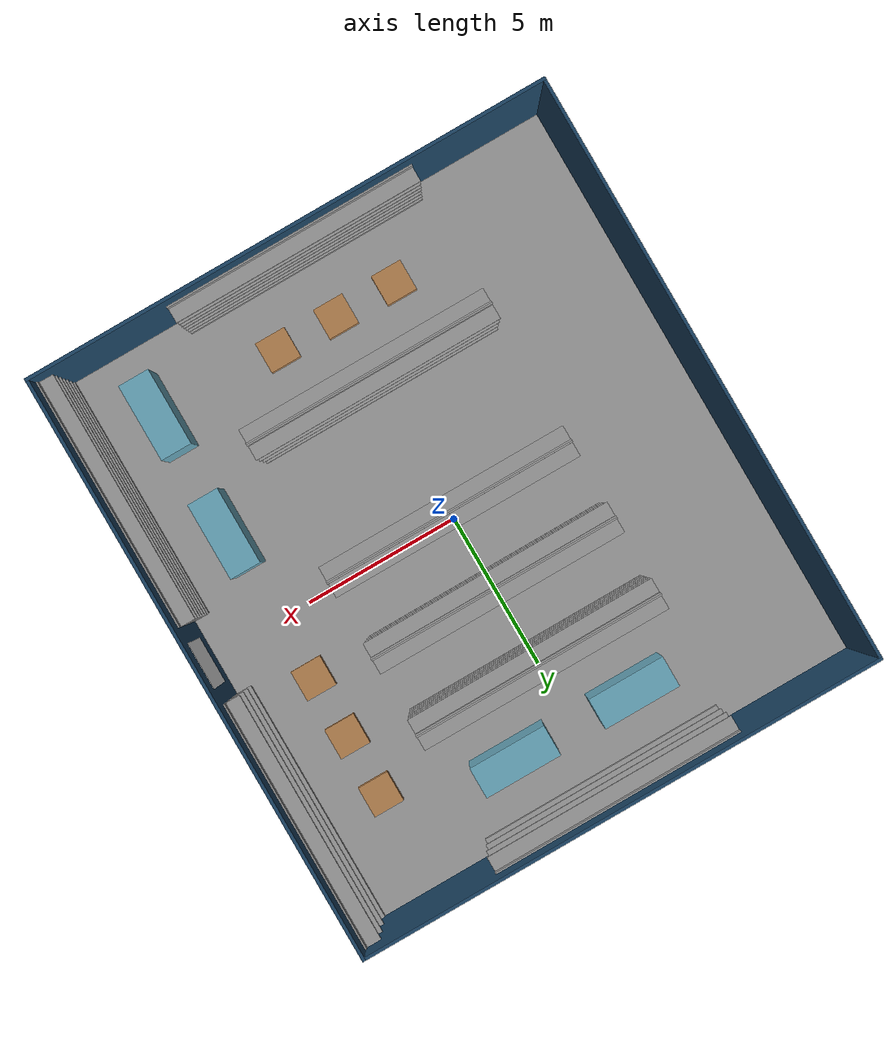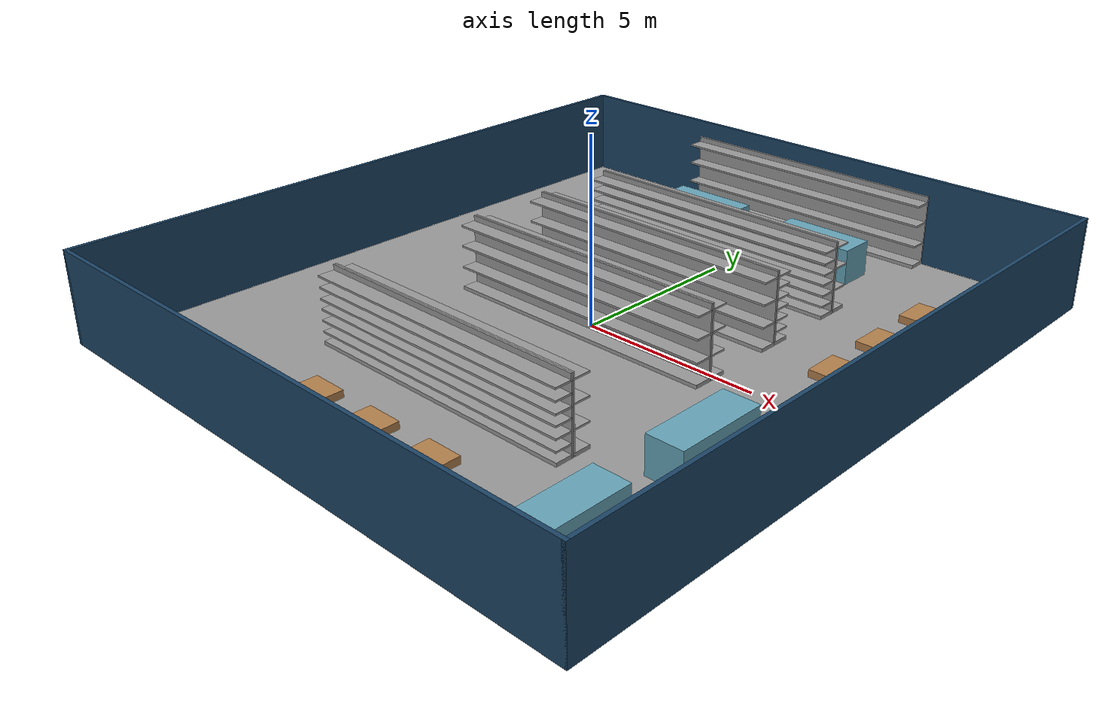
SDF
<sdf version="1.6">
 <world name="grocery_store">
  <include><uri>model://sun</uri></include>
  <include><uri>model://floor</uri></include>
  <include><name>alley_1_left_shelf</name><uri>model://8x_shelving_4</uri><pose>0 9 0 0 0 0</pose></include>
  <include>
   <name>alley_1_right_shelf</name>
   <uri>model://8x_shelving_4</uri>
   <pose>0 5 0 0 0 3.1416</pose>
  </include>
  <include><name>alley_1_freezer_1</name><uri>model://freezer</uri><pose>-2 7 0.5 0 0 0</pose></include>
  <include><name>alley_1_freezer_2</name><uri>model://freezer</uri><pose>2 7 0.5 0 0 0</pose></include>
  <include><name>alley_2_left_shelf</name><uri>model://8x_shelving_8</uri><pose>0 4.5 0 0 0 0</pose></include>
  <include>
   <name>alley_2_right_shelf</name>
   <uri>model://8x_shelving_8</uri>
   <pose>0 2.5 0 0 0 3.1416</pose>
  </include>
  <include><name>alley_3_left_shelf</name><uri>model://8x_shelving_4</uri><pose>0 2 0 0 0 0</pose></include>
  <include>
   <name>alley_3_right_shelf</name>
   <uri>model://8x_shelving_4</uri>
   <pose>0 0 0 0 0 3.1416</pose>
  </include>
  <include><name>alley_4_left_shelf</name><uri>model://8x_shelving_4</uri><pose>0 -0.5 0 0 0 0</pose></include>
  <include>
   <name>alley_4_right_shelf</name>
   <uri>model://8x_shelving_4</uri>
   <pose>0 -4.5 0 0 0 3.1416</pose>
  </include>
  <include><name>alley_5_left_shelf</name><uri>model://8x_shelving_8</uri><pose>0 -5 0 0 0 0</pose></include>
  <include>
   <name>alley_5_right_shelf</name>
   <uri>model://8x_shelving_8</uri>
   <pose>0 -9 0 0 0 3.1416</pose>
  </include>
  <include><name>alley_5_pallet_1</name><uri>model://pallet</uri><pose>-2 -7 0.1 0 0 0</pose></include>
  <include><name>alley_5_pallet_2</name><uri>model://pallet</uri><pose>0 -7 0.1 0 0 0</pose></include>
  <include><name>alley_5_pallet_3</name><uri>model://pallet</uri><pose>2 -7 0.1 0 0 0</pose></include>
  <include>
   <name>back_wall_left_shelf</name>
   <uri>model://8x_shelving_4</uri>
   <pose>8 5.25 0 0 0 -1.5708</pose>
  </include>
  <include>
   <name>back_wall_right_shelf</name>
   <uri>model://8x_shelving_8</uri>
   <pose>8 -5.25 0 0 0 -1.5708</pose>
  </include>
  <include><name>back_wall_freezer_1</name><uri>model://freezer</uri><pose>6 -3 0.5 0 0 1.5708</pose></include>
  <include><name>back_wall_freezer_2</name><uri>model://freezer</uri><pose>6 -7 0.5 0 0 1.5708</pose></include>
  <include><name>back_wall_pallet_1</name><uri>model://pallet</uri><pose>6 2 0.1 0 0 0</pose></include>
  <include><name>back_wall_pallet_2</name><uri>model://pallet</uri><pose>6 4 0.1 0 0 0</pose></include>
  <include><name>back_wall_pallet_3</name><uri>model://pallet</uri><pose>6 6 0.1 0 0 0</pose></include>
  <include><uri>model://walls</uri></include>
  <include><uri>model://logo</uri><pose>8.25 0 1.25 0 0 0</pose></include>
 </world>
</sdf>

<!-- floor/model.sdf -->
<sdf version="1.5">
  <model name="floor">
    <static>true</static>
    <link name="link">
      <collision name="collision">
        <geometry>
          <plane>
            <normal>0 0 1</normal>
            <size>16.6 18.6</size>
          </plane>
        </geometry>
        <surface>
          <contact>
             <collide_bitmask>0xffff</collide_bitmask>
          </contact>
          <friction>
            <ode>
              <mu>100</mu>
              <mu2>50</mu2>
            </ode>
          </friction>
        </surface>
      </collision>
      <visual name="visual">
        <cast_shadows>false</cast_shadows>
        <geometry>
          <plane>
            <normal>0 0 1</normal>
            <size>16.6 18.6</size>
          </plane>
        </geometry>
        <material>
          <script>
            <uri>file://media/materials/scripts/gazebo.material</uri>
            <name>Gazebo/Grey</name>
          </script>
          <ambient>0.99 0.99 0.99 1</ambient>
        </material>
      </visual>
    </link>
  </model>
</sdf>

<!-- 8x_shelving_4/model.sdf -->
<sdf version="1.6">
  <model name="8x_shelving_4">
    <static>true</static>

    <link name="base">
      <pose>0 0 0.05 0 0 0</pose>
      <collision name="collision">
        <geometry>
          <box>
            <size>8 0.5 0.10</size>
          </box>
        </geometry>
      </collision>
      <visual name="visual">
        <geometry>
          <box>
            <size>8 0.5 0.10</size>
          </box>
        </geometry>
        <material>
          <script>
            <uri>file://media/materials/scripts/gazebo.material</uri>
            <name>Gazebo/Grey</name>
          </script>
          <ambient>0.8 0.8 0.8 1</ambient>
        </material>
      </visual>
    </link>

    <link name="back">
      <pose>0 0.225 1 0 0 0</pose>
      <collision name="collision">
        <geometry>
          <box>
            <size>8 0.05 2</size>
          </box>
        </geometry>
      </collision>
      <visual name="visual">
        <geometry>
          <box>
            <size>8 0.05 2</size>
          </box>
        </geometry>
        <material>
          <script>
            <uri>file://media/materials/scripts/gazebo.material</uri>
            <name>Gazebo/Grey</name>
          </script>
          <ambient>0.8 0.8 0.8 1</ambient>
        </material>
      </visual>
    </link>

    <link name="shelf_1">
      <pose>0 0 0.65 0 0 0</pose>
      <collision name="collision">
        <geometry>
          <box>
            <size>8 0.5 0.05</size>
          </box>
        </geometry>
      </collision>
      <visual name="visual">
        <geometry>
          <box>
            <size>8 0.5 0.05</size>
          </box>
        </geometry>
        <material>
          <script>
            <uri>file://media/materials/scripts/gazebo.material</uri>
            <name>Gazebo/Grey</name>
          </script>
          <ambient>0.8 0.8 0.8 1</ambient>
        </material>
      </visual>
    </link>

    <link name="shelf_2">
      <pose>0 0 1.25 0 0 0</pose>
      <collision name="collision">
        <geometry>
          <box>
            <size>8 0.5 0.05</size>
          </box>
        </geometry>
      </collision>
      <visual name="visual">
        <geometry>
          <box>
            <size>8 0.5 0.05</size>
          </box>
        </geometry>
        <material>
          <script>
            <uri>file://media/materials/scripts/gazebo.material</uri>
            <name>Gazebo/Grey</name>
          </script>
          <ambient>0.8 0.8 0.8 1</ambient>
        </material>
      </visual>
    </link>

    <link name="shelf_3">
      <pose>0 0 1.825 0 0 0</pose>
      <collision name="collision">
        <geometry>
          <box>
            <size>8 0.5 0.05</size>
          </box>
        </geometry>
      </collision>
      <visual name="visual">
        <geometry>
          <box>
            <size>8 0.5 0.05</size>
          </box>
        </geometry>
        <material>
          <script>
            <uri>file://media/materials/scripts/gazebo.material</uri>
            <name>Gazebo/Grey</name>
          </script>
          <ambient>0.8 0.8 0.8 1</ambient>
        </material>
      </visual>
    </link>
  </model>
</sdf>

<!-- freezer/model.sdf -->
<sdf version="1.4">
  <model name="freezer">
    <static>true</static>
    <link name="link">
      <collision name="collision">
        <geometry>
          <box>
            <size>2.5 1 1</size>
          </box>
        </geometry>
      </collision>
      <visual name="visual">
        <geometry>
          <box>
            <size>2.5 1 1</size>
          </box>
        </geometry>
        <material>
          <script>
            <uri>file://media/materials/scripts/gazebo.material</uri>
            <name>Gazebo/Grey</name>
          </script>
          <ambient>0.4 0.65 0.73 1</ambient>
        </material>
      </visual>
    </link>
  </model>
</sdf>

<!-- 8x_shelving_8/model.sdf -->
<sdf version="1.6">
  <model name="8x_shelving_8">
    <static>true</static>

    <link name="base">
      <pose>0 0 0.05 0 0 0</pose>
      <collision name="collision">
        <geometry>
          <box>
            <size>8 0.5 0.10</size>
          </box>
        </geometry>
      </collision>
      <visual name="visual">
        <geometry>
          <box>
            <size>8 0.5 0.10</size>
          </box>
        </geometry>
        <material>
          <script>
            <uri>file://media/materials/scripts/gazebo.material</uri>
            <name>Gazebo/Grey</name>
          </script>
          <ambient>0.8 0.8 0.8 1</ambient>
        </material>
      </visual>
    </link>

    <link name="back">
      <pose>0 0.225 1 0 0 0</pose>
      <collision name="collision">
        <geometry>
          <box>
            <size>8 0.05 2</size>
          </box>
        </geometry>
      </collision>
      <visual name="visual">
        <geometry>
          <box>
            <size>8 0.05 2</size>
          </box>
        </geometry>
        <material>
          <script>
            <uri>file://media/materials/scripts/gazebo.material</uri>
            <name>Gazebo/Grey</name>
          </script>
          <ambient>0.8 0.8 0.8 1</ambient>
        </material>
      </visual>
    </link>

    <link name="shelf_1">
      <pose>0 0 0.35 0 0 0</pose>
      <collision name="collision">
        <geometry>
          <box>
            <size>8 0.5 0.05</size>
          </box>
        </geometry>
      </collision>
      <visual name="visual">
        <geometry>
          <box>
            <size>8 0.5 0.05</size>
          </box>
        </geometry>
        <material>
          <script>
            <uri>file://media/materials/scripts/gazebo.material</uri>
            <name>Gazebo/Grey</name>
          </script>
          <ambient>0.8 0.8 0.8 1</ambient>
        </material>
      </visual>
    </link>

    <link name="shelf_2">
      <pose>0 0 0.65 0 0 0</pose>
      <collision name="collision">
        <geometry>
          <box>
            <size>8 0.5 0.05</size>
          </box>
        </geometry>
      </collision>
      <visual name="visual">
        <geometry>
          <box>
            <size>8 0.5 0.05</size>
          </box>
        </geometry>
        <material>
          <script>
            <uri>file://media/materials/scripts/gazebo.material</uri>
            <name>Gazebo/Grey</name>
          </script>
          <ambient>0.8 0.8 0.8 1</ambient>
        </material>
      </visual>
    </link>

    <link name="shelf_3">
      <pose>0 0 0.95 0 0 0</pose>
      <collision name="collision">
        <geometry>
          <box>
            <size>8 0.5 0.05</size>
          </box>
        </geometry>
      </collision>
      <visual name="visual">
        <geometry>
          <box>
            <size>8 0.5 0.05</size>
          </box>
        </geometry>
        <material>
          <script>
            <uri>file://media/materials/scripts/gazebo.material</uri>
            <name>Gazebo/Grey</name>
          </script>
          <ambient>0.8 0.8 0.8 1</ambient>
        </material>
      </visual>
    </link>

    <link name="shelf_4">
      <pose>0 0 1.225 0 0 0</pose>
      <collision name="collision">
        <geometry>
          <box>
            <size>8 0.5 0.05</size>
          </box>
        </geometry>
      </collision>
      <visual name="visual">
        <geometry>
          <box>
            <size>8 0.5 0.05</size>
          </box>
        </geometry>
        <material>
          <script>
            <uri>file://media/materials/scripts/gazebo.material</uri>
            <name>Gazebo/Grey</name>
          </script>
          <ambient>0.8 0.8 0.8 1</ambient>
        </material>
      </visual>
    </link>

    <link name="shelf_5">
      <pose>0 0 1.525 0 0 0</pose>
      <collision name="collision">
        <geometry>
          <box>
            <size>8 0.5 0.05</size>
          </box>
        </geometry>
      </collision>
      <visual name="visual">
        <geometry>
          <box>
            <size>8 0.5 0.05</size>
          </box>
        </geometry>
        <material>
          <script>
            <uri>file://media/materials/scripts/gazebo.material</uri>
            <name>Gazebo/Grey</name>
          </script>
          <ambient>0.8 0.8 0.8 1</ambient>
        </material>
      </visual>
    </link>

    <link name="shelf_6">
      <pose>0 0 1.825 0 0 0</pose>
      <collision name="collision">
        <geometry>
          <box>
            <size>8 0.5 0.05</size>
          </box>
        </geometry>
      </collision>
      <visual name="visual">
        <geometry>
          <box>
            <size>8 0.5 0.05</size>
          </box>
        </geometry>
        <material>
          <script>
            <uri>file://media/materials/scripts/gazebo.material</uri>
            <name>Gazebo/Grey</name>
          </script>
          <ambient>0.8 0.8 0.8 1</ambient>
        </material>
      </visual>
    </link>
  </model>
</sdf>

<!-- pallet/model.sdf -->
<sdf version="1.6">
    <model name="pallet">
      <static>true</static>
      <link name="link">
        <collision name="collision">
          <geometry>
            <box>
              <size>1 1 0.2</size>
            </box>
          </geometry>
        </collision>
        <visual name="visual">
          <geometry>
            <box>
              <size>1 1 0.20</size>
            </box>
          </geometry>
          <material>
            <script>
              <name>Gazebo/WoodPallet</name>
            </script>
          </material>
        </visual>
      </link>
    </model>
</sdf>

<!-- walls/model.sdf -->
<sdf version='1.6'>
  <model name='walls'>
    <pose frame=''>0 0 0 0 -0 0</pose>
    <link name='right'>
      <collision name='right_collision'>
        <geometry>
          <box>
            <size>16.7 0.1 2.5</size>
          </box>
        </geometry>
        <pose frame=''>0 0 1.25 0 -0 0</pose>
      </collision>
      <visual name='right_visual'>
        <pose frame=''>0 0 1.25 0 -0 0</pose>
        <geometry>
          <box>
            <size>16.7 0.1 2.5</size>
          </box>
        </geometry>
        <material>
          <script>
            <uri>file://media/materials/scripts/gazebo.material</uri>
            <name>Gazebo/Grey</name>
          </script>
          <ambient>0.11 0.27 0.4 1</ambient>
        </material>
        <meta>
          <layer>0</layer>
        </meta>
      </visual>
      <pose frame=''>0 -9.3 0 0 -0 0</pose>
    </link>
    <link name='back'>
      <collision name='back_collision'>
        <geometry>
          <box>
            <size>18.7 0.1 2.5</size>
          </box>
        </geometry>
        <pose frame=''>0 0 1.25 0 -0 0</pose>
      </collision>
      <visual name='back_visual'>
        <pose frame=''>0 0 1.25 0 -0 0</pose>
        <geometry>
          <box>
            <size>18.7 0.1 2.5</size>
          </box>
        </geometry>
        <material>
          <script>
            <uri>file://media/materials/scripts/gazebo.material</uri>
            <name>Gazebo/Grey</name>
          </script>
          <ambient>0.11 0.27 0.4 1</ambient>
        </material>
        <meta>
          <layer>0</layer>
        </meta>
      </visual>
      <pose frame=''>8.3 0 0 0 -0 1.5708</pose>
    </link>
    <link name='left'>
      <collision name='left_collision'>
        <geometry>
          <box>
            <size>16.7 0.1 2.5</size>
          </box>
        </geometry>
        <pose frame=''>0 0 1.25 0 -0 0</pose>
      </collision>
      <visual name='left_visual'>
        <pose frame=''>0 0 1.25 0 -0 0</pose>
        <geometry>
          <box>
            <size>16.7 0.1 2.5</size>
          </box>
        </geometry>
        <material>
          <script>
            <uri>file://media/materials/scripts/gazebo.material</uri>
            <name>Gazebo/Grey</name>
          </script>
          <ambient>0.11 0.27 0.4 1</ambient>
        </material>
        <meta>
          <layer>0</layer>
        </meta>
      </visual>
      <pose frame=''>0 9.3 0 0 -0 3.14159</pose>
    </link>
    <link name='front'>
      <collision name='front_collision'>
        <geometry>
          <box>
            <size>18.7 0.1 2.5</size>
          </box>
        </geometry>
        <pose frame=''>0 0 1.25 0 -0 0</pose>
      </collision>
      <visual name='front_visual'>
        <pose frame=''>0 0 1.25 0 -0 0</pose>
        <geometry>
          <box>
            <size>18.7 0.1 2.5</size>
          </box>
        </geometry>
        <material>
          <script>
            <uri>file://media/materials/scripts/gazebo.material</uri>
            <name>Gazebo/Grey</name>
          </script>
          <ambient>0.11 0.27 0.4 1</ambient>
        </material>
        <meta>
          <layer>0</layer>
        </meta>
      </visual>
      <pose frame=''>-8.3 0 0 0 -0 -1.5708</pose>
    </link>
    <static>1</static>
  </model>
</sdf>

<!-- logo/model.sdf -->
<sdf version="1.6">
    <model name="logo">
      <static>true</static>
      <link name="link">
        <collision name="collision">
          <geometry>
            <box>
              <size>0.01 1.5 1.5</size>
            </box>
          </geometry>
        </collision>
        <visual name="visual">
          <geometry>
            <box>
              <size>0.01 1.5 1.5</size>
            </box>
          </geometry>
          <material>
            <script>
              <uri>model://logo/materials/scripts/logo.material</uri>
              <name>Logo/White</name>
            </script>
            <ambient>1 1 1 1</ambient>
          </material>
        </visual>
      </link>
    </model>
</sdf>
